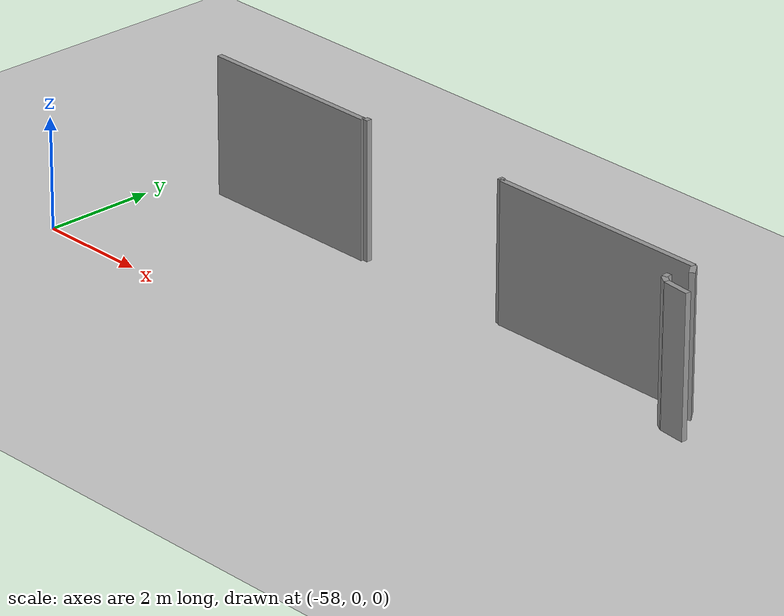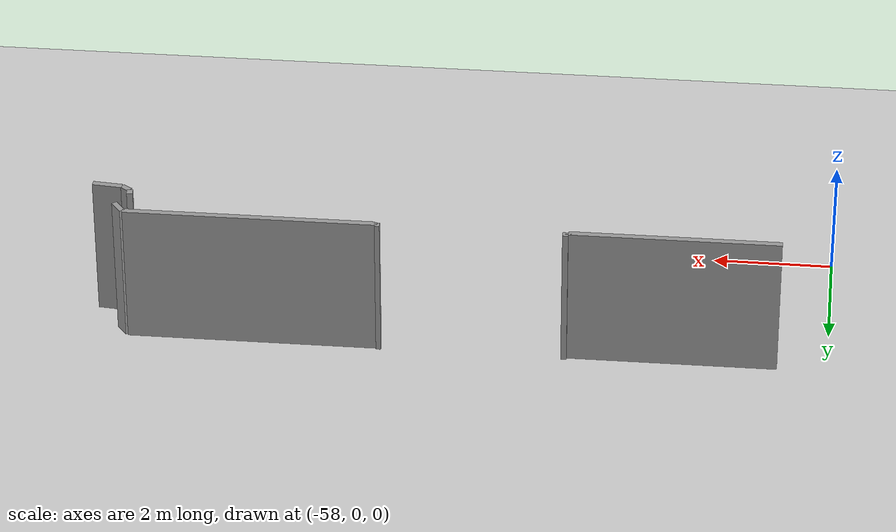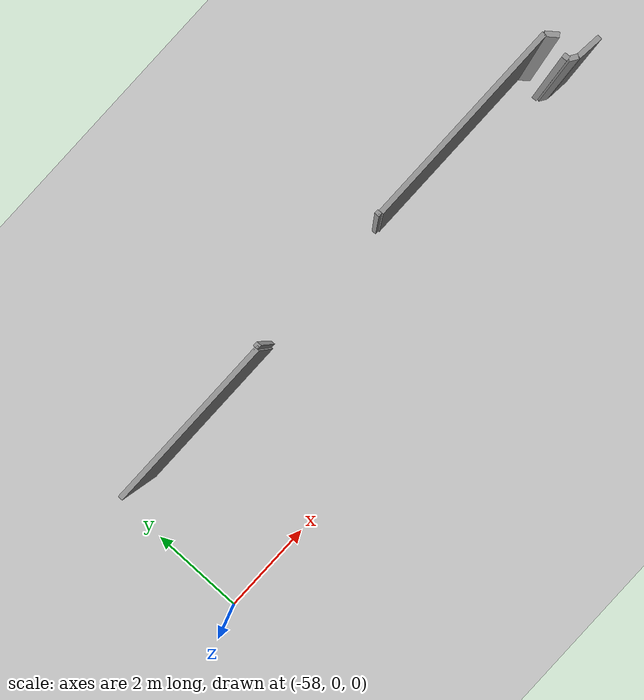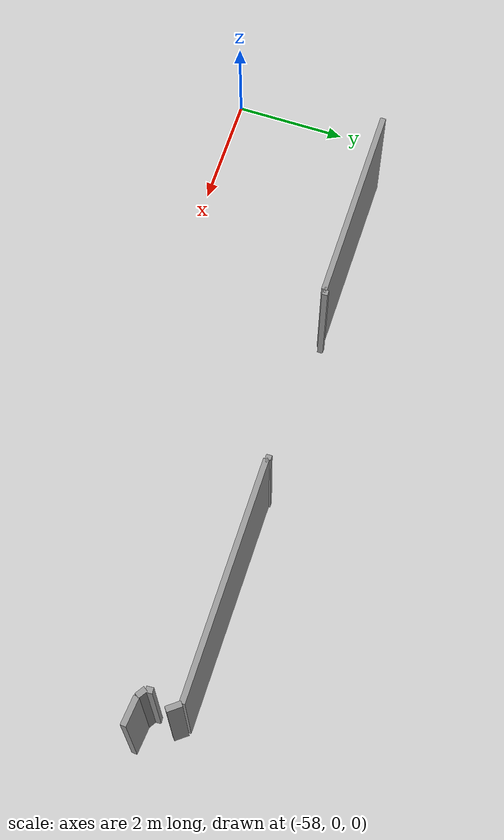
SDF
<sdf version="1.6">
 <world name="default">
  <model name="ground_plane">
   <static>1</static>
   <link name="link">
    <collision name="collision">
     <geometry><plane><normal>0 0 1</normal><size>100 100</size></plane></geometry>
     <surface><friction><ode><mu>100</mu><mu2>50</mu2></ode></friction></surface>
    </collision>
    <visual name="visual">
     <cast_shadows>0</cast_shadows>
     <geometry><plane><normal>0 0 1</normal><size>100 100</size></plane></geometry>
     <material>
      <script><uri>file://media/materials/scripts/gazebo.material</uri><name>Gazebo/Grey</name></script>
     </material>
    </visual>
   </link>
  </model>
  <model name="0510030939_A_40_1_103">
   <static>1</static>
   <link name="Wall_18">
    <collision name="Wall_18_Collision">
     <geometry><box><size>3.47542650189 0.1 2.5</size></box></geometry>
     <pose>1.73771325095 0 1.25 0 0 0</pose>
    </collision>
    <visual name="Wall_18_Visual">
     <pose>1.73771325095 0 1.25 0 0 0</pose>
     <geometry><box><size>3.47542650189 0.1 2.5</size></box></geometry>
     <material>
      <script><uri>file://media/materials/scripts/gazebo.material</uri><name>Gazebo/Grey</name></script>
      <ambient>1 1 1 1</ambient>
     </material>
    </visual>
    <pose>0.483947008927 -14.7329160975 0 0 0 0.0</pose>
   </link>
   <link name="Wall_19">
    <collision name="Wall_19_Collision">
     <geometry><box><size>0.0365981510309 0.1 2.5</size></box></geometry>
     <pose>0.0182990755155 0 1.25 0 0 0</pose>
    </collision>
    <visual name="Wall_19_Visual">
     <pose>0.0182990755155 0 1.25 0 0 0</pose>
     <geometry><box><size>0.0365981510309 0.1 2.5</size></box></geometry>
     <material>
      <script><uri>file://media/materials/scripts/gazebo.material</uri><name>Gazebo/Grey</name></script>
      <ambient>1 1 1 1</ambient>
     </material>
    </visual>
    <pose>3.95937351082 -14.7329160975 0 0 0 1.57079632679</pose>
   </link>
   <link name="Wall_20">
    <collision name="Wall_20_Collision">
     <geometry><box><size>0.0950535311497 0.1 2.5</size></box></geometry>
     <pose>0.0475267655749 0 1.25 0 0 0</pose>
    </collision>
    <visual name="Wall_20_Visual">
     <pose>0.0475267655749 0 1.25 0 0 0</pose>
     <geometry><box><size>0.0950535311497 0.1 2.5</size></box></geometry>
     <material>
      <script><uri>file://media/materials/scripts/gazebo.material</uri><name>Gazebo/Grey</name></script>
      <ambient>1 1 1 1</ambient>
     </material>
    </visual>
    <pose>3.95937351082 -14.6963179464 0 0 0 0.0</pose>
   </link>
   <link name="Wall_21">
    <collision name="Wall_21_Collision">
     <geometry><box><size>0.0831083012994 0.1 2.5</size></box></geometry>
     <pose>0.0415541506497 0 1.25 0 0 0</pose>
    </collision>
    <visual name="Wall_21_Visual">
     <pose>0.0415541506497 0 1.25 0 0 0</pose>
     <geometry><box><size>0.0831083012994 0.1 2.5</size></box></geometry>
     <material>
      <script><uri>file://media/materials/scripts/gazebo.material</uri><name>Gazebo/Grey</name></script>
      <ambient>1 1 1 1</ambient>
     </material>
    </visual>
    <pose>7.04467388887 -14.6963179464 0 0 0 0.0</pose>
   </link>
   <link name="Wall_22">
    <collision name="Wall_22_Collision">
     <geometry><box><size>0.0255424595737 0.1 2.5</size></box></geometry>
     <pose>0.0127712297868 0 1.25 0 0 0</pose>
    </collision>
    <visual name="Wall_22_Visual">
     <pose>0.0127712297868 0 1.25 0 0 0</pose>
     <geometry><box><size>0.0255424595737 0.1 2.5</size></box></geometry>
     <material>
      <script><uri>file://media/materials/scripts/gazebo.material</uri><name>Gazebo/Grey</name></script>
      <ambient>1 1 1 1</ambient>
     </material>
    </visual>
    <pose>7.12778219017 -14.6963179464 0 0 0 -1.57079632679</pose>
   </link>
   <link name="Wall_23">
    <collision name="Wall_23_Collision">
     <geometry><box><size>4.15427137275 0.1 2.5</size></box></geometry>
     <pose>2.07713568637 0 1.25 0 0 0</pose>
    </collision>
    <visual name="Wall_23_Visual">
     <pose>2.07713568637 0 1.25 0 0 0</pose>
     <geometry><box><size>4.15427137275 0.1 2.5</size></box></geometry>
     <material>
      <script><uri>file://media/materials/scripts/gazebo.material</uri><name>Gazebo/Grey</name></script>
      <ambient>1 1 1 1</ambient>
     </material>
    </visual>
    <pose>7.12778219017 -14.721860406 0 0 0 0.0</pose>
   </link>
   <link name="Wall_24">
    <collision name="Wall_24_Collision">
     <geometry><box><size>0.263878079095 0.1 2.5</size></box></geometry>
     <pose>0.131939039548 0 1.25 0 0 0</pose>
    </collision>
    <visual name="Wall_24_Visual">
     <pose>0.131939039548 0 1.25 0 0 0</pose>
     <geometry><box><size>0.263878079095 0.1 2.5</size></box></geometry>
     <material>
      <script><uri>file://media/materials/scripts/gazebo.material</uri><name>Gazebo/Grey</name></script>
      <ambient>1 1 1 1</ambient>
     </material>
    </visual>
    <pose>11.2820535629 -14.721860406 0 0 0 -0.909668684216</pose>
   </link>
   <link name="Wall_27">
    <collision name="Wall_27_Collision">
     <geometry><box><size>0.116695152244 0.1 2.5</size></box></geometry>
     <pose>0.0583475761218 0 1.25 0 0 0</pose>
    </collision>
    <visual name="Wall_27_Visual">
     <pose>0.0583475761218 0 1.25 0 0 0</pose>
     <geometry><box><size>0.116695152244 0.1 2.5</size></box></geometry>
     <material>
      <script><uri>file://media/materials/scripts/gazebo.material</uri><name>Gazebo/Grey</name></script>
      <ambient>1 1 1 1</ambient>
     </material>
    </visual>
    <pose>11.2322394129 -15.2042443689 0 0 0 -1.4999543752</pose>
   </link>
   <link name="Wall_28">
    <collision name="Wall_28_Collision">
     <geometry><box><size>0.17400843633 0.1 2.5</size></box></geometry>
     <pose>0.0870042181649 0 1.25 0 0 0</pose>
    </collision>
    <visual name="Wall_28_Visual">
     <pose>0.0870042181649 0 1.25 0 0 0</pose>
     <geometry><box><size>0.17400843633 0.1 2.5</size></box></geometry>
     <material>
      <script><uri>file://media/materials/scripts/gazebo.material</uri><name>Gazebo/Grey</name></script>
      <ambient>1 1 1 1</ambient>
     </material>
    </visual>
    <pose>11.2404994123 -15.3206468215 0 0 0 -0.580508314039</pose>
   </link>
   <link name="Wall_29">
    <collision name="Wall_29_Collision">
     <geometry><box><size>0.496441539185 0.1 2.5</size></box></geometry>
     <pose>0.248220769592 0 1.25 0 0 0</pose>
    </collision>
    <visual name="Wall_29_Visual">
     <pose>0.248220769592 0 1.25 0 0 0</pose>
     <geometry><box><size>0.496441539185 0.1 2.5</size></box></geometry>
     <material>
      <script><uri>file://media/materials/scripts/gazebo.material</uri><name>Gazebo/Grey</name></script>
      <ambient>1 1 1 1</ambient>
     </material>
    </visual>
    <pose>11.386002478 -15.4160815834 0 0 0 -0.0922821337498</pose>
   </link>
   <pose>-57.65 17.6622597452 0 0 0 0</pose>
  </model>
 </world>
</sdf>
